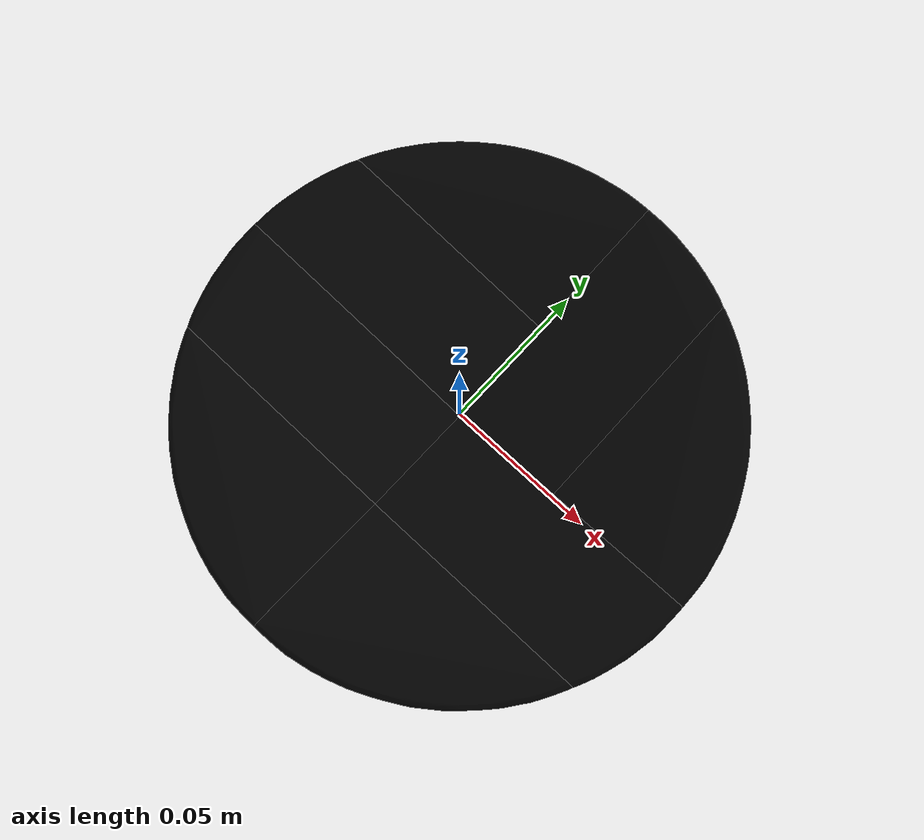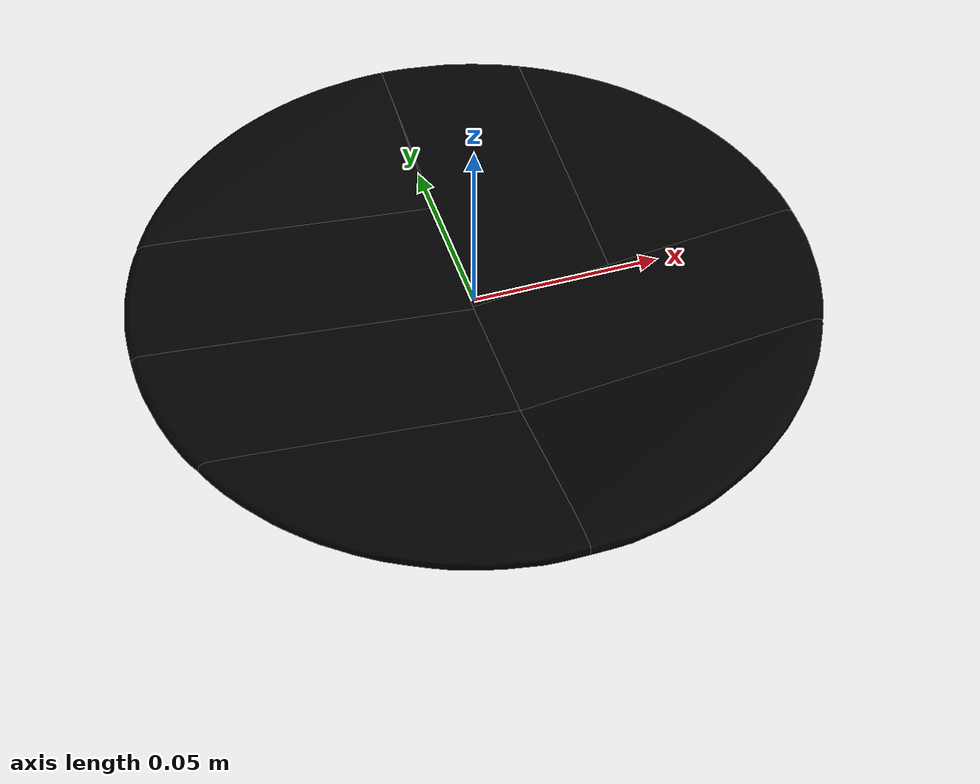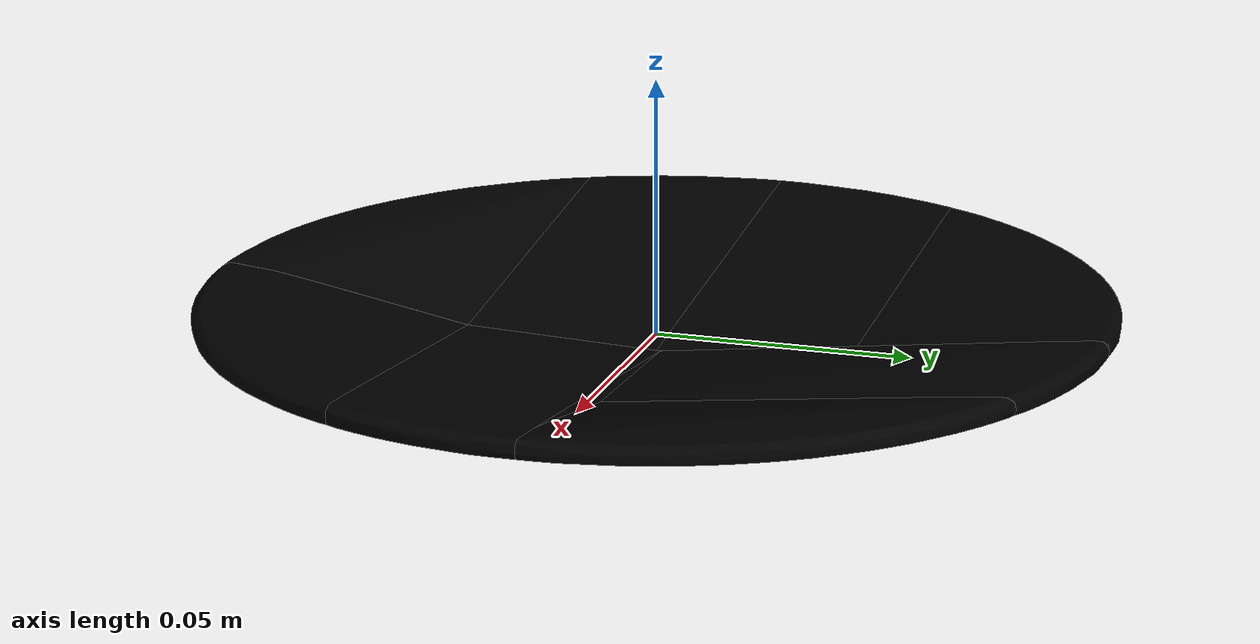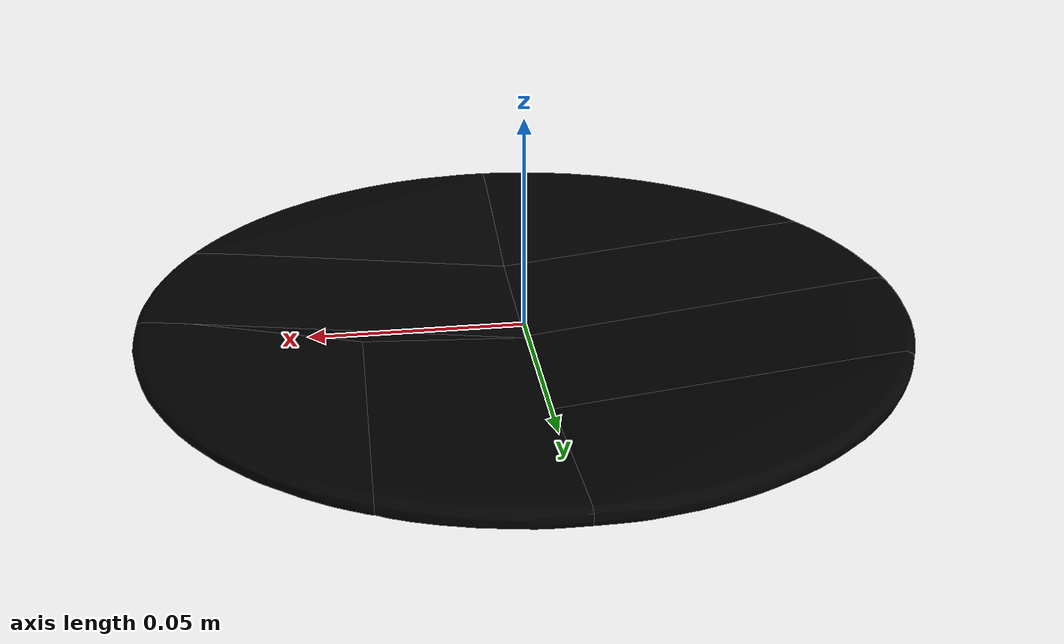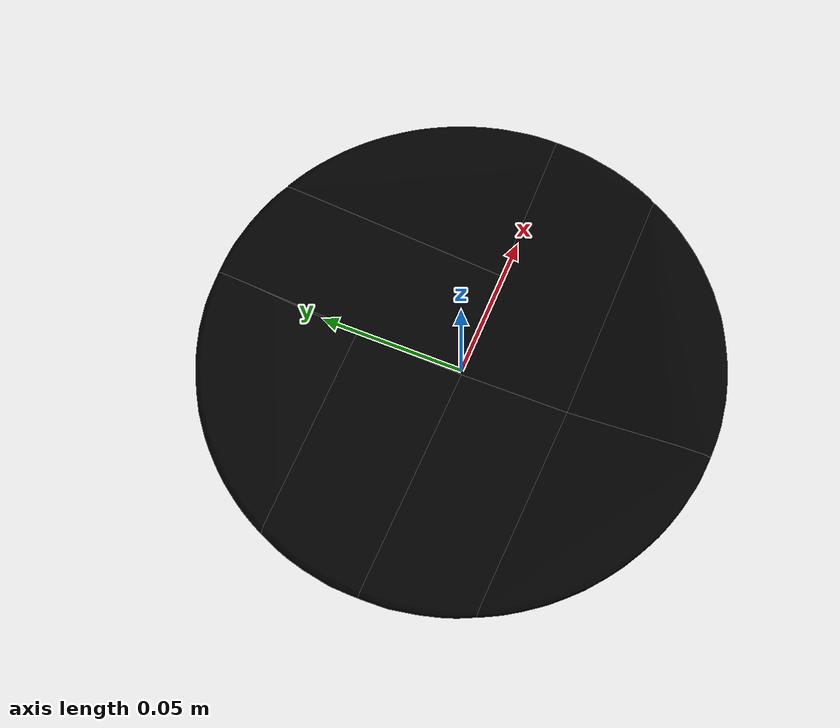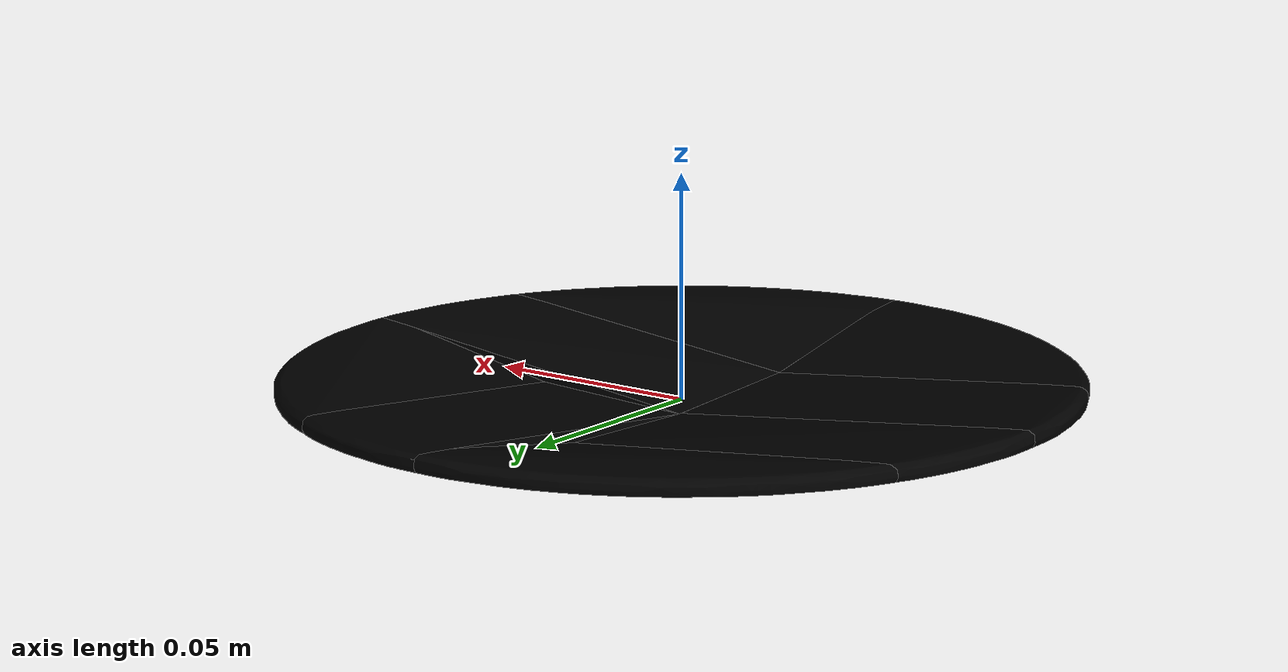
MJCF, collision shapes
<mujoco model="plate_36">
  <asset>
    <mesh file="visual/model_normalized_0.obj" name="model_normalized_0_vis" scale="0.175 0.175 0.175" refquat="1.0 0.0 0.0 0.0" />
    <material name="Scene_-_Root.057" specular="0.5" shininess="0.220790393" rgba="0.801495 0.785538 0.785538 1.0" />
    <mesh file="collision/model_collision_0.obj" name="model_collision_0" scale="0.175 0.175 0.175" refquat="1.0 0.0 0.0 0.0" />
    <mesh file="collision/model_collision_1.obj" name="model_collision_1" scale="0.175 0.175 0.175" refquat="1.0 0.0 0.0 0.0" />
    <mesh file="collision/model_collision_2.obj" name="model_collision_2" scale="0.175 0.175 0.175" refquat="1.0 0.0 0.0 0.0" />
    <mesh file="collision/model_collision_3.obj" name="model_collision_3" scale="0.175 0.175 0.175" refquat="1.0 0.0 0.0 0.0" />
    <mesh file="collision/model_collision_4.obj" name="model_collision_4" scale="0.175 0.175 0.175" refquat="1.0 0.0 0.0 0.0" />
    <mesh file="collision/model_collision_5.obj" name="model_collision_5" scale="0.175 0.175 0.175" refquat="1.0 0.0 0.0 0.0" />
    <mesh file="collision/model_collision_6.obj" name="model_collision_6" scale="0.175 0.175 0.175" refquat="1.0 0.0 0.0 0.0" />
    <mesh file="collision/model_collision_7.obj" name="model_collision_7" scale="0.175 0.175 0.175" refquat="1.0 0.0 0.0 0.0" />
  </asset>
  <default>
    <default class="region">
      <geom group="1" conaffinity="0" contype="0" rgba="0 1 0 0" />
    </default>
  </default>
  <worldbody>
    <body>
      <body name="object">
        <geom density="0" type="mesh" mesh="model_normalized_0_vis" conaffinity="0" contype="0" group="2" material="Scene_-_Root.057" mass="0.18" />
        <geom class="region" name="reg_bbox" type="box" pos="0.0 -8.749999995394385e-10 0.0006934129999999999" size="0.08587888399999999 0.08587891375 0.00521517325" />
        <geom density="0" friction="1.2 0.1 0.001" type="mesh" group="3" rgba="0 0 0 0" mesh="model_collision_0"  condim="4"/>        <geom density="0" friction="1.2 0.1 0.001" type="mesh" group="3" rgba="0 0 0 0" mesh="model_collision_1"  condim="4"/>        <geom density="0" friction="1.2 0.1 0.001" type="mesh" group="3" rgba="0 0 0 0" mesh="model_collision_2"  condim="4"/>        <geom density="0" friction="1.2 0.1 0.001" type="mesh" group="3" rgba="0 0 0 0" mesh="model_collision_3"  condim="4"/>        <geom density="0" friction="1.2 0.1 0.001" type="mesh" group="3" rgba="0 0 0 0" mesh="model_collision_4"  condim="4"/>        <geom density="0" friction="1.2 0.1 0.001" type="mesh" group="3" rgba="0 0 0 0" mesh="model_collision_5"  condim="4"/>        <geom density="0" friction="1.2 0.1 0.001" type="mesh" group="3" rgba="0 0 0 0" mesh="model_collision_6"  condim="4"/>        <geom density="0" friction="1.2 0.1 0.001" type="mesh" group="3" rgba="0 0 0 0" mesh="model_collision_7"  condim="4"/>      </body>
    </body>
  </worldbody>
</mujoco>
